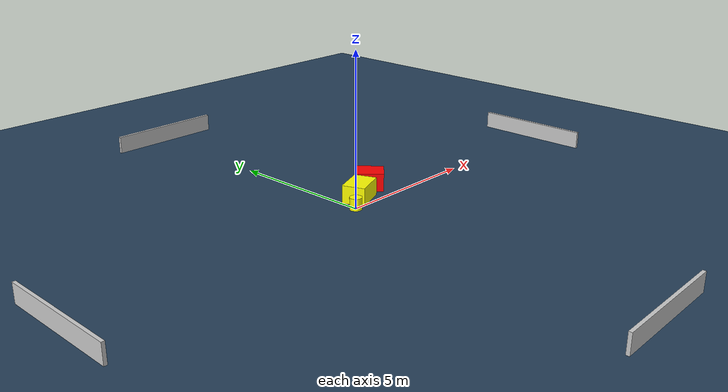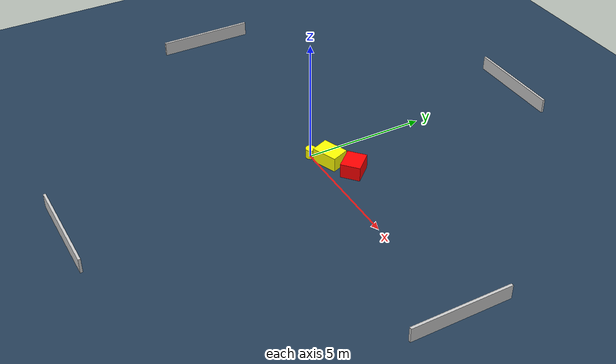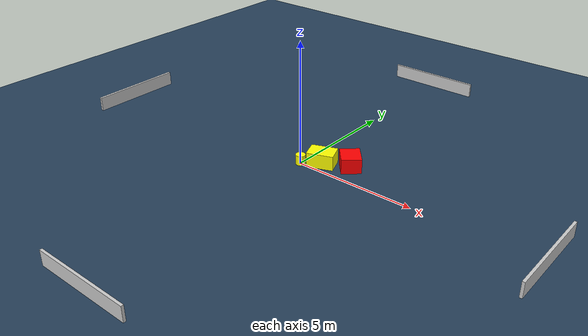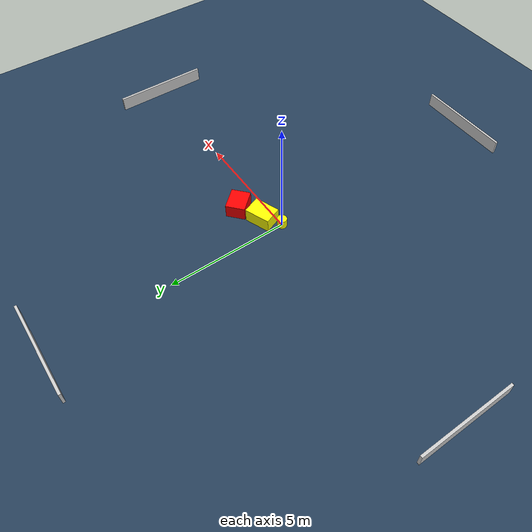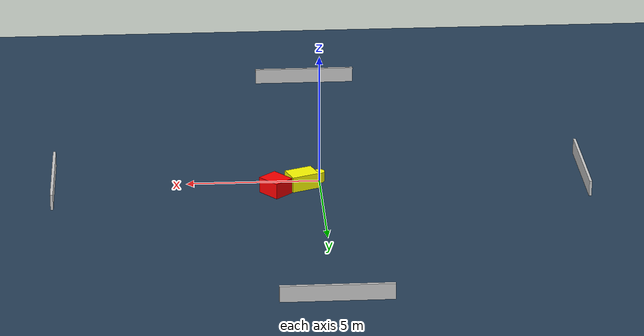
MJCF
<?xml version="1.0" ?>
<mujoco model="generated_environment">
  <option timestep="0.01" integrator="RK4" cone="elliptic"/>
  <default>
    <geom density="1"/>
  </default>
  <asset>
    <texture builtin="gradient" height="3072" name="skybox" rgb1="0.3 0.5 0.7" rgb2="0 0 0" type="skybox" width="512"/>
    <texture builtin="checker" height="300" name="groundplane" rgb1="0.2 0.3 0.4" rgb2="0.1 0.2 0.3" type="2d" width="300"/>
    <material name="groundplane" reflectance="0.2" texrepeat="5 5" texture="groundplane"/>
  </asset>
  <worldbody>
    <light dir="0 0 -1" directional="true" pos="0 0 1.5"/>
    <geom condim="3" friction="0.5 0.005 0.001" material="groundplane" name="floor" pos="0 0 0" size="0 0 0.05" type="plane"/>
    <body name="walls">
      <geom name="wall_1" condim="4" pos="-10.0 0.0 0.3" rgba="0.800000011920929 0.800000011920929 0.800000011920929 1.0" size="0.05 2.0 0.3" type="box"/>
      <geom name="wall_2" condim="4" pos="10.0 0.0 0.3" rgba="0.800000011920929 0.800000011920929 0.800000011920929 1.0" size="0.05 2.0 0.3" type="box"/>
      <geom name="wall_3" condim="4" pos="0.0 -10.0 0.3" rgba="0.800000011920929 0.800000011920929 0.800000011920929 1.0" size="2.0 0.05 0.3" type="box"/>
      <geom name="wall_4" condim="4" pos="0.0 10.0 0.3" rgba="0.800000011920929 0.800000011920929 0.800000011920929 1.0" size="2.0 0.05 0.3" type="box"/>
    </body>
    <body name="robot">
      <joint name="joint_x" type="slide" pos="0 0 0" axis="1 0 0"/>
      <joint name="joint_y" type="slide" pos="0 0 0" axis="0 1 0"/>
      <geom name="robot" type="cylinder" pos="0.0 0.0 0.2" size="0.2 0.2 0.0" mass="5.0" friction="1.0 0.005 0.0001" condim="4" rgba="1.0 1.0 0.0 1.0"/>
    </body>
    <body name="obstacle_1_movable">
      <geom name="obstacle_1_movable" condim="4" pos="0.6841522116931813 0.4812971700910008 0.3" euler="0 0 201.32660117840632" friction="0.0 0.005 0.001" rgba="1.0 1.0 0.0 1.0" size="0.5346165449468299 0.37671153913928257 0.3" type="box" mass="0.1"/>
      <joint type="free"/>
    </body>
    <body name="obstacle_2_static">
      <geom name="obstacle_2_static" condim="4" pos="1.6905111344846673 0.9562598994317809 0.3" euler="0 0 311.458599648475" friction="0.0 0.005 0.001" rgba="1.0 0.0 0.0 1.0" size="0.46596287252523394 0.3971669717756202 0.3" type="box"/>
    </body>
  </worldbody>
  <actuator>
    <motor name="actuator_x" joint="joint_x" gear="1" ctrlrange="-1 1"/>
    <motor name="actuator_y" joint="joint_y" gear="1" ctrlrange="-1 1"/>
  </actuator>
</mujoco>
